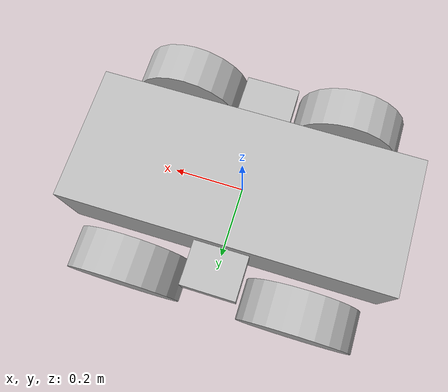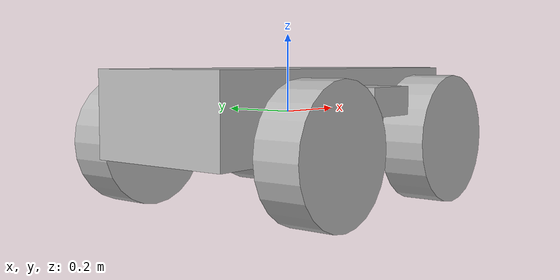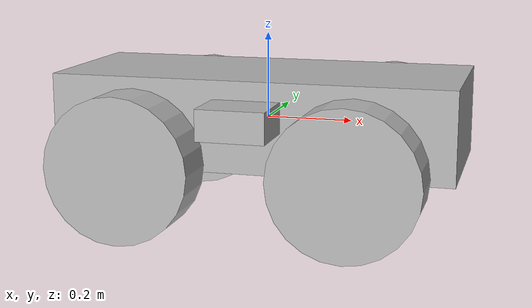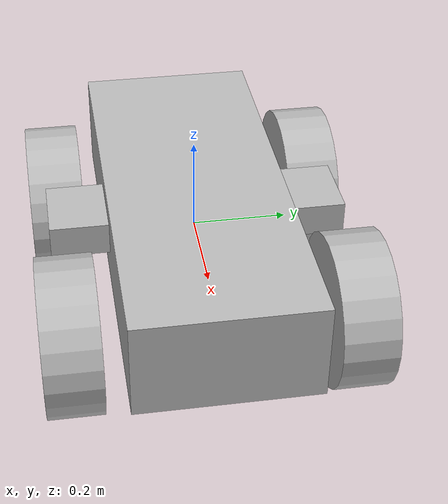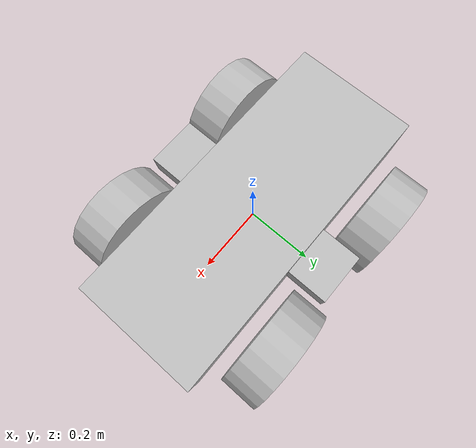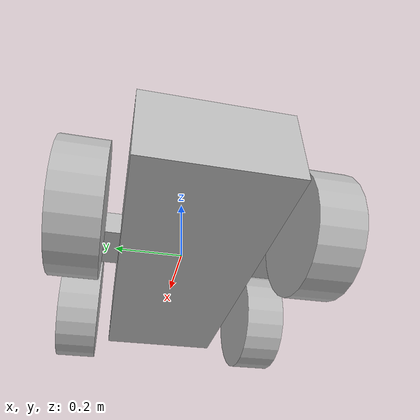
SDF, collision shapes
<?xml version="1.0" ?>
<sdf version='1.7'>
  <model name='scout_v2'>

    <link name='base_link'>

      <inertial>
        <pose>0 0 0 0 0 0</pose>
        <mass>50</mass>
        <inertia>
          <ixx>2.28864</ixx>
          <ixy>0</ixy>
          <ixz>0</ixz>
          <iyy>5.10398</iyy>
          <iyz>0</iyz>
          <izz>3.43147</izz>
        </inertia>
      </inertial>

      <collision name='base_link_collision'>
        <pose>0 0 0.008 0 0 0</pose>
        <geometry>
          <box>
            <size>0.925 0.38 0.21</size>
          </box>
        </geometry>
      </collision>

      <collision name='base_link_collision_1'>
        <pose>0 0 0.035 0 0 0</pose>
        <geometry>
          <box>
            <size>0.154167 0.627 0.07</size>
          </box>
        </geometry>
      </collision>

      <visual name='base_link_visual'>
        <pose>0 0 0 0 0 0</pose>
        <geometry>
         <mesh>
            <scale>1 1 1</scale>
            <uri>model://scout_common/meshes/base_link.dae</uri>
          </mesh>
        </geometry>
      </visual>
    </link>

    <joint name='front_left_wheel' type='revolute'>
      <pose relative_to='base_link'>0.249 0.29153 -0.0702 0 0 0</pose>
      <parent>base_link</parent>
      <child>front_left_wheel_link</child>
      <axis>
        <xyz>0 1 0</xyz>
      </axis>
    </joint>

    <link name='front_left_wheel_link'>
      <pose relative_to='front_left_wheel'>0 0 0 0 0 0</pose>

      <inertial>
        <pose>0 0 0 0 -0 0</pose>
        <mass>8</mass>
        <inertia>
          <ixx>0.1171</ixx>
          <ixy>0</ixy>
          <ixz>0</ixz>
          <iyy>0.1361</iyy>
          <iyz>0</iyz>
          <izz>0.1171</izz>
        </inertia>
      </inertial>

      <collision name='front_left_wheel_link_collision'>
        <pose>0 0 0 1.57079 -0 0</pose>
        <geometry>
          <cylinder>
            <length>0.11653</length>
            <radius>0.16459</radius>
          </cylinder>
        </geometry>
        <surface>
          <contact>
            <ode>
              <kp>1e+09</kp>
              <kd>0</kd>
              <min_depth>0.001</min_depth>
            </ode>
          </contact>
          <friction>
            <ode>
              <mu>0.9</mu>
              <mu2>0.7</mu2>
              <fdir1>1 0 0</fdir1>
            </ode>
          </friction>
        </surface>
      </collision>

      <visual name='front_left_wheel_link_visual'>
        <pose>0 0 0 0 0 0</pose>
        <geometry>
          <mesh>
            <scale>1 1 1</scale>
            <uri>model://scout_common/meshes/wheel_type1.dae</uri>
          </mesh>
        </geometry>
      </visual>
    </link>

    <joint name='front_right_wheel' type='revolute'>
      <pose relative_to='base_link'>0.249 -0.29153 -0.0702 3.14 0 0</pose>
      <parent>base_link</parent>
      <child>front_right_wheel_link</child>
      <axis>
        <xyz>0 -1 0</xyz>
      </axis>
    </joint>

    <link name='front_right_wheel_link'>
      <pose relative_to='front_right_wheel'>0 0 0 0 0 0</pose>

      <inertial>
        <pose>0 0 0 0 -0 0</pose>
        <mass>8</mass>
        <inertia>
          <ixx>0.1171</ixx>
          <ixy>0</ixy>
          <ixz>0</ixz>
          <iyy>0.1361</iyy>
          <iyz>0</iyz>
          <izz>0.1171</izz>
        </inertia>
      </inertial>

      <collision name='front_right_wheel_link_collision'>
        <pose>0 0 0 1.57079 -0 0</pose>
        <geometry>
          <cylinder>
            <length>0.11653</length>
            <radius>0.16459</radius>
          </cylinder>
        </geometry>
        <surface>
          <contact>
            <ode>
              <kp>1e+09</kp>
              <kd>0</kd>
              <min_depth>0.001</min_depth>
            </ode>
          </contact>
          <friction>
            <ode>
              <mu>0.9</mu>
              <mu2>0.7</mu2>
              <fdir1>1 0 0</fdir1>
            </ode>
          </friction>
        </surface>
      </collision>

      <visual name='front_right_wheel_link_visual'>
        <pose>0 0 0 0 0 0</pose>
        <geometry>
          <mesh>
            <scale>1 1 1</scale>
            <uri>model://scout_common/meshes/wheel_type1.dae</uri>
          </mesh>
        </geometry>
      </visual>
    </link>

    <joint name='rear_left_wheel' type='revolute'>
      <pose relative_to='base_link'>-0.249 0.29153 -0.0702 0 0 0</pose>

      <parent>base_link</parent>
      <child>rear_left_wheel_link</child>
      <axis>
        <xyz>0 1 0</xyz>
      </axis>
    </joint>

    <link name='rear_left_wheel_link'>
      <pose relative_to='rear_left_wheel'>0 0 0 0 0 0</pose>

      <inertial>
        <pose>0 0 0 0 -0 0</pose>
        <mass>8</mass>
        <inertia>
          <ixx>0.1171</ixx>
          <ixy>0</ixy>
          <ixz>0</ixz>
          <iyy>0.1361</iyy>
          <iyz>0</iyz>
          <izz>0.1171</izz>
        </inertia>
      </inertial>

      <collision name='rear_left_wheel_link_collision'>
        <pose>0 0 0 1.57079 0 0</pose>
        <geometry>
          <cylinder>
            <length>0.11653</length>
            <radius>0.16459</radius>
          </cylinder>
        </geometry>
        <surface>
          <contact>
            <ode>
              <kp>1e+09</kp>
              <kd>0</kd>
              <min_depth>0.001</min_depth>
            </ode>
          </contact>
          <friction>
            <ode>
              <mu>0.9</mu>
              <mu2>0.7</mu2>
              <fdir1>1 0 0</fdir1>
            </ode>
          </friction>
        </surface>
      </collision>

      <visual name='rear_left_wheel_link_visual'>
        <pose>0 0 0 0 -0 0</pose>
        <geometry>
          <mesh>
            <scale>1 1 1</scale>
            <uri>model://scout_common/meshes/wheel_type1.dae</uri>
          </mesh>
        </geometry>
      </visual>
    </link>

    <joint name='rear_right_wheel' type='revolute'>
      <pose relative_to='base_link'>-0.249 -0.29153 -0.0702 3.14 0 0</pose>

      <parent>base_link</parent>
      <child>rear_right_wheel_link</child>
      <axis>
        <xyz>0 -1 0</xyz>
      </axis>
    </joint>

    <link name='rear_right_wheel_link'>
      <pose relative_to='rear_right_wheel'>0 0 0 0 0 0</pose>

      <inertial>
        <pose>0 0 0 0 0 0</pose>
        <mass>8</mass>
        <inertia>
          <ixx>0.1171</ixx>
          <ixy>0</ixy>
          <ixz>0</ixz>
          <iyy>0.1361</iyy>
          <iyz>0</iyz>
          <izz>0.1171</izz>
        </inertia>
      </inertial>

      <collision name='rear_right_wheel_link_collision'>
        <pose>0 0 0 1.57079 0 0</pose>
        <geometry>
          <cylinder>
            <length>0.11653</length>
            <radius>0.16459</radius>
          </cylinder>
        </geometry>
        <surface>
          <contact>
            <ode>
              <kp>1e+09</kp>
              <kd>0</kd>
              <min_depth>0.001</min_depth>
            </ode>
          </contact>
          <friction>
            <ode>
              <mu>0.9</mu>
              <mu2>0.7</mu2>
              <fdir1>1 0 0</fdir1>
            </ode>
          </friction>
        </surface>
      </collision>

      <visual name='rear_right_wheel_link_visual'>
        <pose>0 0 0 0 0 0</pose>
        <geometry>
          <mesh>
            <scale>1 1 1</scale>
            <uri>model://scout_common/meshes/wheel_type1.dae</uri>
          </mesh>
        </geometry>
      </visual>
    </link>

    <plugin name="scout_v2_joint_state" filename="libgazebo_ros_joint_state_publisher.so">
      <ros>
        <namespace>/robot_namespace</namespace>
        <remapping>~/out:=joint_states</remapping>
      </ros>

      <update_rate>50</update_rate>

      <joint_name>front_right_wheel</joint_name>
      <joint_name>front_left_wheel</joint_name>
      <joint_name>rear_right_wheel</joint_name>
      <joint_name>rear_left_wheel</joint_name>
    </plugin>

    <plugin name='skid_steer_drive' filename='libgazebo_ros_diff_drive.so'>
      <!-- topics & remappings -->
      <ros>
        <namespace>/robot_namespace</namespace>
        <remapping>/tf:=tf</remapping>
      </ros>

      <!-- Update rate -->
      <update_rate>50</update_rate>

      <!-- Number of wheel pairs -->
      <num_wheel_pairs>2</num_wheel_pairs>

      <!-- front wheels -->
      <left_joint>front_left_wheel</left_joint>
      <right_joint>front_right_wheel</right_joint>

      <!-- rear wheels-->
      <left_joint>rear_left_wheel</left_joint>
      <right_joint>rear_right_wheel</right_joint>

      <!-- kinematics -->
      <wheel_separation>0.582</wheel_separation>
      <wheel_separation>0.582</wheel_separation>
      <wheel_diameter>0.32918</wheel_diameter>
      <wheel_diameter>0.32918</wheel_diameter>

      <wheel_separation_multiplier>1.875</wheel_separation_multiplier>
      <left_wheel_radius_multiplier>1.0</left_wheel_radius_multiplier>
      <right_wheel_radius_multiplier>1.0</right_wheel_radius_multiplier>

      <!-- limits -->
      <max_wheel_torque>20</max_wheel_torque>
      <max_wheel_acceleration>1.0</max_wheel_acceleration>

      <!-- output -->
      <publish_odom>true</publish_odom>
      <publish_odom_tf>false</publish_odom_tf>
      <publish_wheel_tf>false</publish_wheel_tf>

      <odometry_frame>odom</odometry_frame>
      <robot_base_frame>base_link</robot_base_frame>
    </plugin>
  </model>
</sdf>
